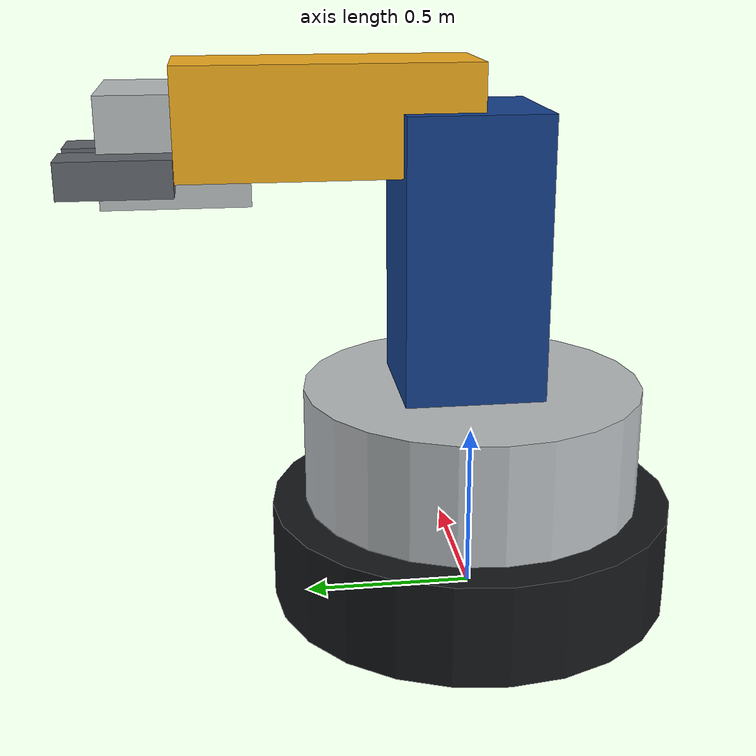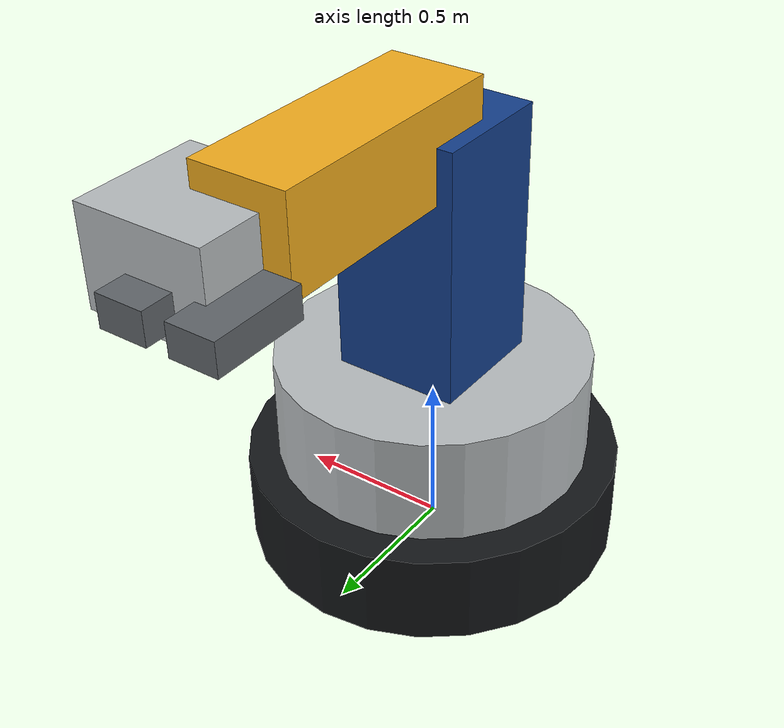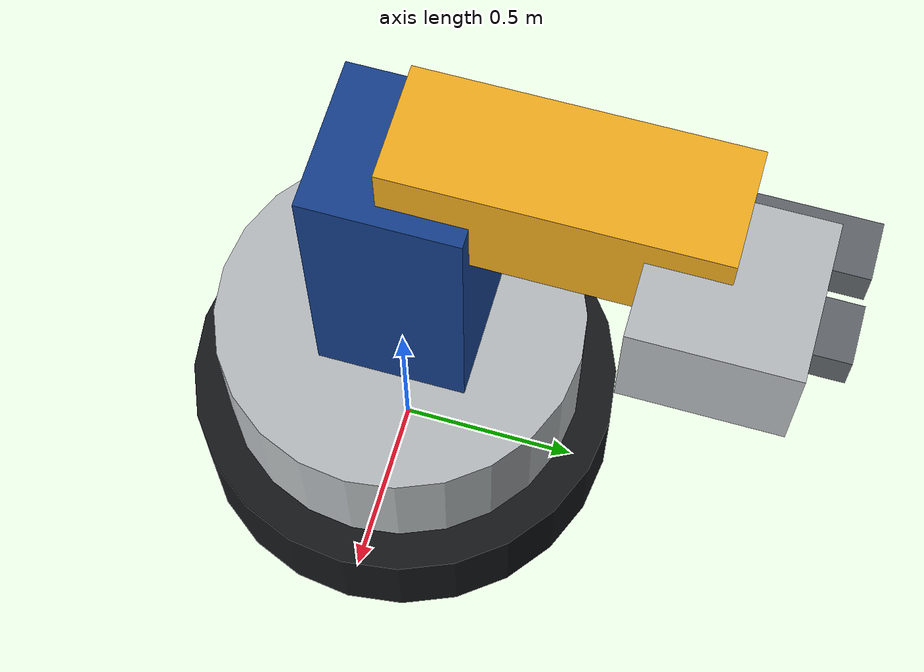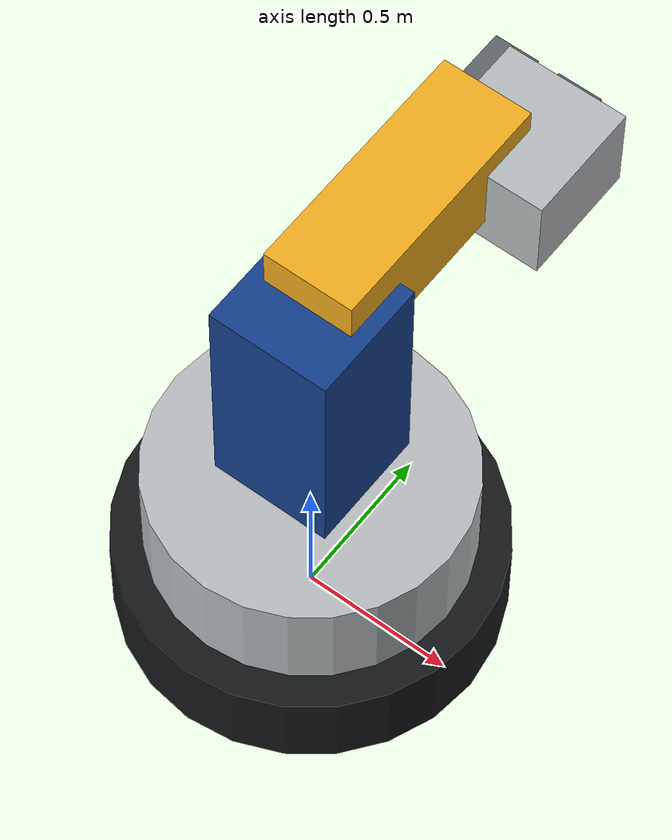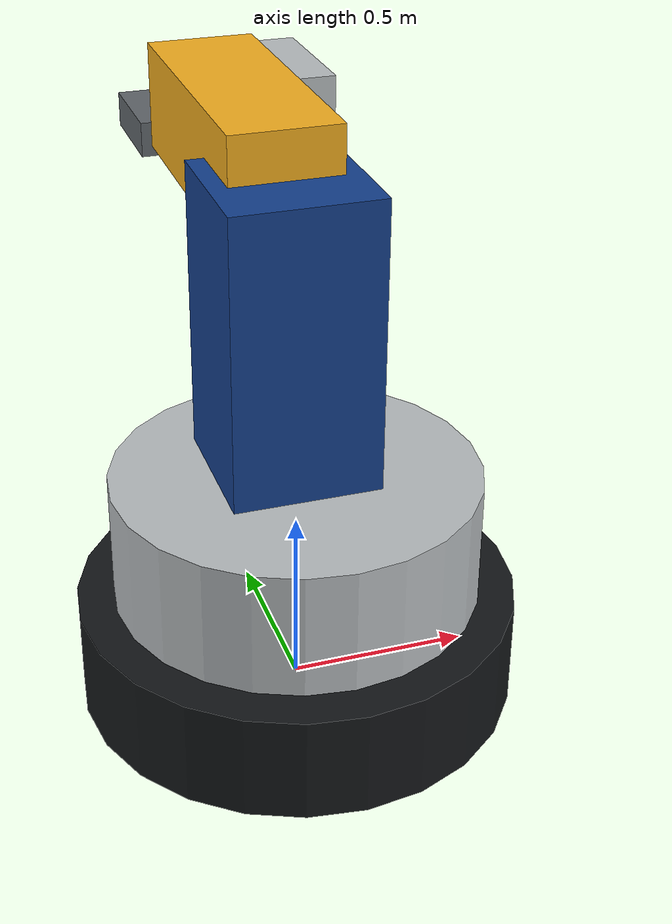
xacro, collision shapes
<?xml version="1.0"?>
<robot xmlns:xacro="http://www.ros.org/wiki/xacro" name="bras_robotique">
    <xacro:arg name="initial_positions_file" default="initial_positions.yaml" />

    <!-- Import bras_robotique urdf file -->
    <xacro:include filename="$(find modelisation_bras_robotique)/urdf/bras_robotique.urdf.xacro" />

    <!-- Import control_xacro -->
    <xacro:include filename="bras_robotique.ros2_control.xacro" />

    <xacro:bras_robotique_ros2_control name="FakeSystem" initial_positions_file="$(arg initial_positions_file)"/>

</robot>

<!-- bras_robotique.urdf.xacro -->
<robot name="bras_robotique" xmlns:xacro="http://www.ros.org/wiki/xacro">
  <xacro:include filename="$(find modelisation_bras_robotique)/urdf/arm.urdf.xacro"/>
</robot>

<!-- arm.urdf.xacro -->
<robot name="bras_robotique" xmlns:xacro="http://www.ros.org/wiki/xacro">
  <xacro:property name="PI" value="3.14159265359"/>
  <xacro:property name="description_package" value="modelisation_bras_robotique"/>
  <xacro:property name="mesh_scale" value="0.01 0.01 0.01"/>

  <xacro:include filename="$(find modelisation_bras_robotique)/urdf/materials.xacro"/>
  <xacro:include filename="$(find modelisation_bras_robotique)/urdf/inertials.xacro"/>
  <xacro:include filename="$(find modelisation_bras_robotique)/urdf/arm_macro.xacro"/>

  <link name="world"/>

  <link name="base_link">
    <xacro:mesh_visual mesh="basement.STL" material="industrial_dark" xyz="-0.5 -0.5 0" rpy="0 0 0"/>
    <xacro:cylinder_collision xyz="0 0 0.15" rpy="0 0 0" radius="0.6" length="0.3"/>
    <xacro:box_link_inertial mass="1.0" x="1.2" y="1.2" z="0.3" xyz="0 0 0.15"/>
  </link>

  <joint name="virtual_joint" type="fixed">
    <parent link="world"/>
    <child link="base_link"/>
    <origin xyz="0 0 0" rpy="0 0 0"/>
  </joint>

  <link name="base_plate">
    <xacro:mesh_visual mesh="base_plate.STL" material="industrial_silver" xyz="-0.39 -0.39 -0.56" rpy="0 0 0"/>
    <xacro:cylinder_collision xyz="0 0 0.175" rpy="0 0 0" radius="0.5" length="0.35"/>
    <xacro:box_link_inertial mass="0.8" x="1.0" y="1.0" z="0.35" xyz="0 0 0.175"/>
  </link>

  <joint name="joint1" type="revolute">
    <parent link="base_link"/>
    <child link="base_plate"/>
    <!-- Repere base_link/base_plate : ecart vertical de 3.07 cm mesure sur le schema -> Z=0.0307. Multiplie par 10 pour correspondre a l'echelle visuelle de 0.01 -> Z=0.307. -->
    <origin xyz="0 0 0.307" rpy="0 0 0"/>
    <axis xyz="0 0 1"/>
    <limit lower="-3.14" upper="3.14" effort="30.0" velocity="2.0"/>
  </joint>

  <link name="forward_drive_arm">
    <xacro:mesh_visual mesh="forward_drive_arm.STL" material="industrial_blue" xyz="0.19 0.06 -0.08" rpy="0 -${PI/2} ${PI/2}"/>
    <xacro:box_collision xyz="0 0 0.4" rpy="0 0 0" size="0.4 0.4 0.8"/>
    <xacro:box_link_inertial mass="0.6" x="0.4" y="0.4" z="0.8" xyz="0 0 0.4"/>
  </link>

  <joint name="joint2" type="revolute">
    <parent link="base_plate"/>
    <child link="forward_drive_arm"/>
    <origin xyz="-0.018 0.03 0.36" rpy="0 0 0"/>
    <axis xyz="1 0 0"/>
    <limit lower="-1.57" upper="1.57" effort="25.0" velocity="2.0"/>
  </joint>

  <link name="horizontal_arm">
    <xacro:mesh_visual mesh="horizontal_arm.STL" material="industrial_yellow" xyz="-0.03 -0.4 -0.06" rpy="${PI/2} 0 ${PI/2}"/>
    <xacro:box_collision xyz="0 0.41 0" rpy="0 0 0" size="0.3 0.82 0.3"/>
    <xacro:box_link_inertial mass="0.5" x="0.3" y="0.82" z="0.3" xyz="0 0.41 0"/>
  </link>

  <joint name="joint3" type="revolute">
    <parent link="forward_drive_arm"/>
    <child link="horizontal_arm"/>
    <!-- Repere forward_drive_arm/horizontal_arm : ecart vertical de 8 cm -> Z=0.08. Multiplie par 10 -> Z=0.8. -->
    <origin xyz="0 -0.02 0.78" rpy="0 0 0"/>
    <axis xyz="1 0 0"/>
    <limit lower="-1.57" upper="1.57" effort="20.0" velocity="2.0"/>
  </joint>

  <link name="claw_support">
    <xacro:mesh_visual mesh="claw_support.STL" material="industrial_silver" xyz="0 -0.05 -0.15" rpy="0 0 ${PI/2}"/>
    <xacro:box_collision xyz="0 0 -0.1" rpy="0 0 0" size="0.4 0.4 0.3"/>
    <xacro:box_link_inertial mass="0.25" x="0.4" y="0.4" z="0.3" xyz="0 0 -0.1"/>
  </link>

  <joint name="joint_claw" type="fixed">
    <parent link="horizontal_arm"/>
    <child link="claw_support"/>
    <!-- Repere horizontal_arm/claw_support : longueur d'avant-bras de 8.2 cm -> Y=0.082. Multiplie par 10 -> Y=0.82. -->
    <origin xyz="0.135 0.82 0.02" rpy="0 0 0"/>
  </joint>

  <link name="gripper_right">
    <xacro:mesh_visual mesh="right_finger.STL" material="gripper_gray" xyz="-0.1 0.5 -0.1" rpy="0 0 -${PI/2}"/>
    <xacro:box_collision xyz="0 0.15 -0.05" rpy="0 0 0" size="0.15 0.3 0.1"/>
    <xacro:box_link_inertial mass="0.1" x="0.15" y="0.3" z="0.1" xyz="0 0.15 -0.05"/>
  </link>

  <joint name="joint4" type="revolute">
    <parent link="claw_support"/>
    <child link="gripper_right"/>
    <origin xyz="-0.02 0 -0.1" rpy="0 0 0"/>
    <axis xyz="0 0 1"/>
    <limit lower="-0.5" upper="0.0" effort="10.0" velocity="2.0"/>
  </joint>

  <link name="gripper_left">
    <xacro:mesh_visual mesh="left_finger.STL" material="gripper_gray" xyz="-0.04 0.5 -0.1" rpy="0 0 -${PI/2}"/>
    <xacro:box_collision xyz="0 0.15 -0.05" rpy="0 0 0" size="0.15 0.3 0.1"/>
    <xacro:box_link_inertial mass="0.1" x="0.15" y="0.3" z="0.1" xyz="0 0.15 -0.05"/>
  </link>

  <joint name="joint5" type="revolute">
    <parent link="claw_support"/>
    <child link="gripper_left"/>
    <!-- Repere claw_support/gripper_left : symetrique de joint4 selon l'axe X.
         Pivot gauche : X = -0.126 - 0.11 = -0.236. Meme Y=0 et Z=-0.1. -->
    <origin xyz="-0.24 0 -0.1" rpy="0 0 0"/>
    <axis xyz="0 0 1"/>
    <limit lower="0.0" upper="0.5" effort="10.0" velocity="2.0"/>
    <mimic joint="joint4" multiplier="-1"/>
  </joint>
</robot>

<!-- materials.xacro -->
<robot xmlns:xacro="http://www.ros.org/wiki/xacro">
  <material name="industrial_dark">
    <color rgba="0.08 0.09 0.10 1.0"/>
  </material>
  <material name="industrial_blue">
    <color rgba="0.08 0.25 0.55 1.0"/>
  </material>
  <material name="industrial_silver">
    <color rgba="0.72 0.74 0.75 1.0"/>
  </material>
  <material name="industrial_yellow">
    <color rgba="0.95 0.68 0.12 1.0"/>
  </material>
  <material name="gripper_gray">
    <color rgba="0.38 0.40 0.42 1.0"/>
  </material>
</robot>

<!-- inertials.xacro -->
<robot xmlns:xacro="http://www.ros.org/wiki/xacro">
  <xacro:macro name="box_inertia" params="mass x y z">
    <inertia
      ixx="${mass * (y * y + z * z) / 12.0}"
      ixy="0.0"
      ixz="0.0"
      iyy="${mass * (x * x + z * z) / 12.0}"
      iyz="0.0"
      izz="${mass * (x * x + y * y) / 12.0}"/>
  </xacro:macro>

  <xacro:macro name="box_link_inertial" params="mass x y z xyz:='0 0 0' rpy:='0 0 0'">
    <inertial>
      <origin xyz="${xyz}" rpy="${rpy}"/>
      <mass value="${mass}"/>
      <xacro:box_inertia mass="${mass}" x="${x}" y="${y}" z="${z}"/>
    </inertial>
  </xacro:macro>
</robot>

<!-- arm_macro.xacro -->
<robot xmlns:xacro="http://www.ros.org/wiki/xacro">
  <xacro:macro name="mesh_visual" params="mesh material xyz rpy">
    <visual>
      <origin xyz="${xyz}" rpy="${rpy}"/>
      <geometry>
        <mesh filename="package://${description_package}/meshes/${mesh}" scale="${mesh_scale}"/>
      </geometry>
      <material name="${material}"/>
    </visual>
  </xacro:macro>

  <xacro:macro name="box_collision" params="xyz rpy size">
    <collision>
      <origin xyz="${xyz}" rpy="${rpy}"/>
      <geometry>
        <box size="${size}"/>
      </geometry>
    </collision>
  </xacro:macro>

  <xacro:macro name="cylinder_collision" params="xyz rpy radius length">
    <collision>
      <origin xyz="${xyz}" rpy="${rpy}"/>
      <geometry>
        <cylinder radius="${radius}" length="${length}"/>
      </geometry>
    </collision>
  </xacro:macro>
</robot>
